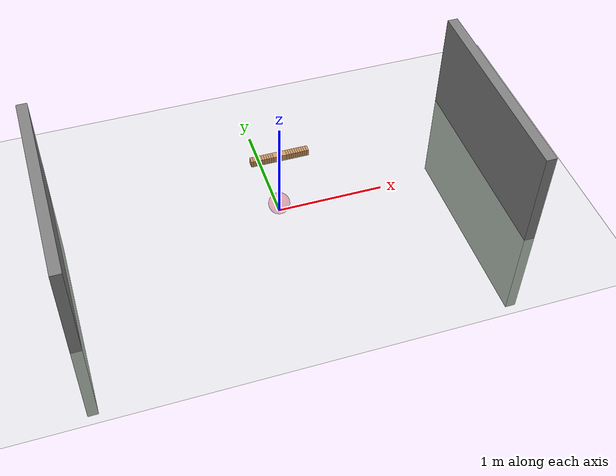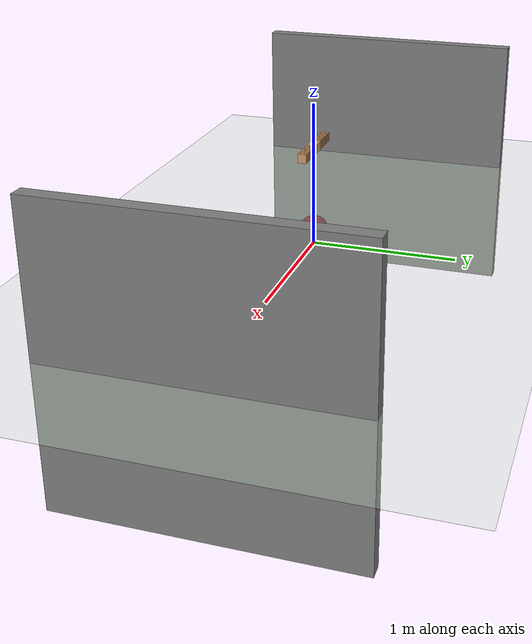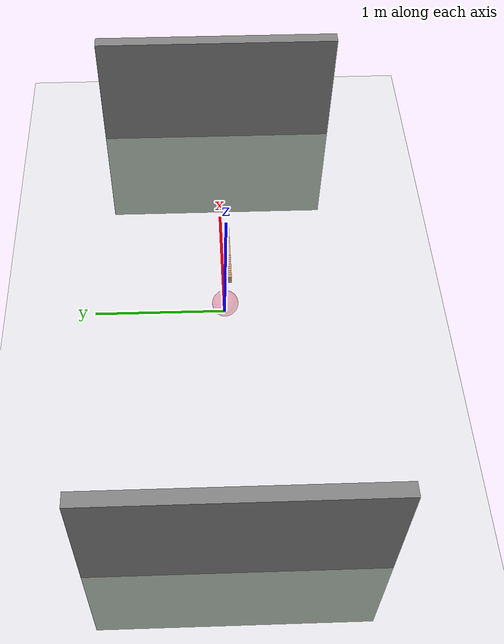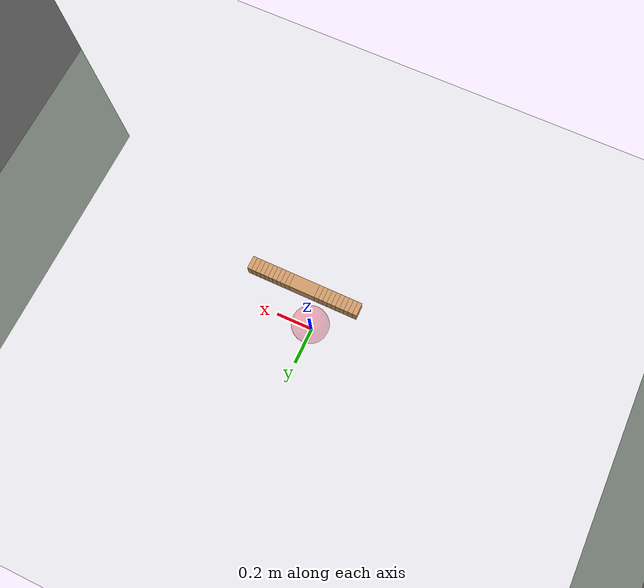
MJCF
<mujoco model="cheetah">
  <compiler angle="radian" coordinate="local" inertiafromgeom="true" settotalmass="14"/>
  <default>
    <joint armature=".1" damping=".01" limited="true" solimplimit="0 .8 .03" solreflimit=".02 1" stiffness="8"/>
    <geom conaffinity="0" condim="3" contype="1" friction=".4 .1 .1" rgba="0.8 0.6 .4 1" solimp="0.0 0.8 0.01" solref="0.02 1"/>
    <motor ctrllimited="true" ctrlrange="-1 1"/>
  </default>
  <size nstack="300000" nuser_geom="1"/>
  <option gravity="0 0 -9.81" timestep="0.01"/>
  <asset>
    <texture builtin="gradient" height="100" rgb1="1 1 1" rgb2="0 0 0" type="skybox" width="100"/>
    <texture builtin="flat" height="1278" mark="cross" markrgb="1 1 1" name="texgeom" random="0.01" rgb1="0.8 0.6 0.4" rgb2="0.8 0.6 0.4" type="cube" width="127"/>
    <texture builtin="checker" height="100" name="texplane" rgb1="0 0 0" rgb2="0.8 0.8 0.8" type="2d" width="100"/>
    <material name="MatPlane" reflectance="0.5" shininess="1" specular="1" texrepeat="60 60" texture="texplane"/>
    <material name="geom" texture="texgeom" texuniform="true"/>
  </asset>
  <worldbody>
    <light cutoff="100" diffuse="1 1 1" dir="-0 0 -1.3" directional="true" exponent="1" pos="0 0 1.3" specular=".1 .1 .1"/>
    <geom conaffinity="1" condim="3" material="MatPlane" name="floor" pos="0 0 0" rgba="0.8 0.9 0.8 1" size="40 40 40" type="plane"/>
    <site name="fwall" fromto="2.0 0 0 2.1 0 0" size="1.0" type="box"/>
    <site name="bwall" fromto="-2.0 0 0 -2.1 0 0" size="1.0" type="box"/>
    <site pos="0 0 0.1" size="0.1" type="sphere" rgba="0.8 0 0 0.30"/>

    <body name="torso" pos="0 0 .7">
      <camera name="track" mode="trackcom" pos="0 -3 0.3" xyaxes="1 0 0 0 0 1"/>
      <joint armature="0" axis="1 0 0" damping="0" limited="false" name="rootx" pos="0 0 0" stiffness="0" type="slide"/>
      <joint armature="0" axis="0 0 1" damping="0" limited="false" name="rootz" pos="0 0 0" stiffness="0" type="slide"/>
      <joint armature="0" axis="0 1 0" damping="0" limited="false" name="rooty" pos="0 0 0" stiffness="0" type="hinge"/>
      <geom fromto="-.06 0 0 .06 0 0" name="torso" size="0.03" type="box"/>
      <body name="ffinger1" pos=".06 0 0">
        <joint axis="0 1 0" damping="6" name="ffinger1" pos="0 0 0" range="-.1 .1" stiffness="240" type="hinge"/>
        <geom fromto="0 0 0 .02 0 0" name="ffinger1" size="0.03" type="box"/>
        <body name="ffinger2" pos=".02 0 0">
          <joint axis="0 1 0" damping="6" name="ffinger2" pos="0 0 0" range="-.1 .1" stiffness="240" type="hinge"/>
          <geom fromto="0 0 0 .02 0 0" name="ffinger2" size="0.03" type="box"/>
          <body name="ffinger3" pos=".02 0 0">
            <joint axis="0 1 0" damping="6" name="ffinger3" pos="0 0 0" range="-.1 .1" stiffness="240" type="hinge"/>
            <geom fromto="0 0 0 .02 0 0" name="ffinger3" size="0.03" type="box"/>
            <body name="ffinger4" pos=".02 0 0">
              <joint axis="0 1 0" damping="6" name="ffinger4" pos="0 0 0" range="-.1 .1" stiffness="240" type="hinge"/>
              <geom fromto="0 0 0 .02 0 0" name="ffinger4" size="0.03" type="box"/>
              <body name="ffinger5" pos=".02 0 0">
                <joint axis="0 1 0" damping="6" name="ffinger5" pos="0 0 0" range="-.1 .1" stiffness="240" type="hinge"/>
                <geom fromto="0 0 0 .02 0 0" name="ffinger5" size="0.03" type="box"/>
                <body name="ffinger6" pos=".02 0 0">
                  <joint axis="0 1 0" damping="6" name="ffinger6" pos="0 0 0" range="-.1 .1" stiffness="240" type="hinge"/>
                  <geom fromto="0 0 0 .02 0 0" name="ffinger6" size="0.03" type="box"/>
                  <body name="ffinger7" pos=".02 0 0">
                    <joint axis="0 1 0" damping="6" name="ffinger7" pos="0 0 0" range="-.1 .1" stiffness="240" type="hinge"/>
                    <geom fromto="0 0 0 .02 0 0" name="ffinger7" size="0.03" type="box"/>
                    <body name="ffinger8" pos=".02 0 0">
                      <joint axis="0 1 0" damping="6" name="ffinger8" pos="0 0 0" range="-.1 .1" stiffness="240" type="hinge"/>
                      <geom fromto="0 0 0 .02 0 0" name="ffinger8" size="0.03" type="box"/>
                      <body name="ffinger9" pos=".02 0 0">
                        <joint axis="0 1 0" damping="6" name="ffinger9" pos="0 0 0" range="-.1 .1" stiffness="240" type="hinge"/>
                        <geom fromto="0 0 0 .02 0 0" name="ffinger9" size="0.03" type="box"/>
                        <body name="ffinger10" pos=".02 0 0">
                          <joint axis="0 1 0" damping="6" name="ffinger10" pos="0 0 0" range="-.1 .1" stiffness="240" type="hinge"/>
                          <geom fromto="0 0 0 .02 0 0" name="ffinger10" size="0.03" type="box"/>
                        </body>
                      </body>
                    </body>
                  </body>
                </body>
              </body>
            </body>
          </body>
        </body>
      </body>
      <body name="bfinger1" pos="-.06 0 0">
        <joint axis="0 1 0" damping="6" name="bfinger1" pos="0 0 0" range="-.1 .1" stiffness="240" type="hinge"/>
        <geom fromto="-.02 0 0 0 0 0" name="bfinger1" size="0.03" type="box"/>
        <body name="bfinger2" pos="-.02 0 0">
          <joint axis="0 1 0" damping="6" name="bfinger2" pos="0 0 0" range="-.1 .1" stiffness="240" type="hinge"/>
          <geom fromto="-.02 0 0 0 0 0" name="bfinger2" size="0.03" type="box"/>
          <body name="bfinger3" pos="-.02 0 0">
            <joint axis="0 1 0" damping="6" name="bfinger3" pos="0 0 0" range="-.1 .1" stiffness="240" type="hinge"/>
            <geom fromto="-.02 0 0 0 0 0" name="bfinger3" size="0.03" type="box"/>
            <body name="bfinger4" pos="-.02 0 0">
              <joint axis="0 1 0" damping="6" name="bfinger4" pos="0 0 0" range="-.1 .1" stiffness="240" type="hinge"/>
              <geom fromto="-.02 0 0 0 0 0" name="bfinger4" size="0.03" type="box"/>
              <body name="bfinger5" pos="-.02 0 0">
                <joint axis="0 1 0" damping="6" name="bfinger5" pos="0 0 0" range="-.1 .1" stiffness="240" type="hinge"/>
                <geom fromto="-.02 0 0 0 0 0" name="bfinger5" size="0.03" type="box"/>
                <body name="bfinger6" pos="-.02 0 0">
                  <joint axis="0 1 0" damping="6" name="bfinger6" pos="0 0 0" range="-.1 .1" stiffness="240" type="hinge"/>
                  <geom fromto="-.02 0 0 0 0 0" name="bfinger6" size="0.03" type="box"/>
                  <body name="bfinger7" pos="-.02 0 0">
                    <joint axis="0 1 0" damping="6" name="bfinger7" pos="0 0 0" range="-.1 .1" stiffness="240" type="hinge"/>
                    <geom fromto="-.02 0 0 0 0 0" name="bfinger7" size="0.03" type="box"/>
                    <body name="bfinger8" pos="-.02 0 0">
                      <joint axis="0 1 0" damping="6" name="bfinger8" pos="0 0 0" range="-.1 .1" stiffness="240" type="hinge"/>
                      <geom fromto="-.02 0 0 0 0 0" name="bfinger8" size="0.03" type="box"/>
                      <body name="bfinger9" pos="-.02 0 0">
                        <joint axis="0 1 0" damping="6" name="bfinger9" pos="0 0 0" range="-.1 .1" stiffness="240" type="hinge"/>
                        <geom fromto="-.02 0 0 0 0 0" name="bfinger9" size="0.03" type="box"/>
                        <body name="bfinger10" pos="-.02 0 0">
                          <joint axis="0 1 0" damping="6" name="bfinger10" pos="0 0 0" range="-.1 .1" stiffness="240" type="hinge"/>
                          <geom fromto="-.02 0 0 0 0 0" name="bfinger10" size="0.03" type="box"/>
                        </body>
                      </body>
                    </body>
                  </body>
                </body>
              </body>
            </body>
          </body>
        </body>
      </body>
    </body>
  </worldbody>
  <equality>
    <joint joint1="ffinger1" joint2="ffinger2"/>
    <joint joint1="ffinger1" joint2="ffinger3"/>
    <joint joint1="ffinger1" joint2="ffinger4"/>
    <joint joint1="ffinger1" joint2="ffinger5"/>
    <joint joint1="ffinger1" joint2="ffinger6"/>
    <joint joint1="ffinger1" joint2="ffinger7"/>
    <joint joint1="ffinger1" joint2="ffinger8"/>
    <joint joint1="ffinger1" joint2="ffinger9"/>
    <joint joint1="ffinger1" joint2="ffinger10"/>
    <joint joint1="bfinger1" joint2="bfinger2"/>
    <joint joint1="bfinger1" joint2="bfinger3"/>
    <joint joint1="bfinger1" joint2="bfinger4"/>
    <joint joint1="bfinger1" joint2="bfinger5"/>
    <joint joint1="bfinger1" joint2="bfinger6"/>
    <joint joint1="bfinger1" joint2="bfinger7"/>
    <joint joint1="bfinger1" joint2="bfinger8"/>
    <joint joint1="bfinger1" joint2="bfinger9"/>
    <joint joint1="bfinger1" joint2="bfinger10"/>
  </equality>
  <actuator>
    <motor gear="300" joint="ffinger1" name="ffinger"/>
    <motor gear="300" joint="bfinger1" name="bfinger"/>
  </actuator>
  <sensor>
    <touch site="fwall" name="fwall"/>
    <touch site="bwall" name="bwall"/>
  </sensor>
</mujoco>
